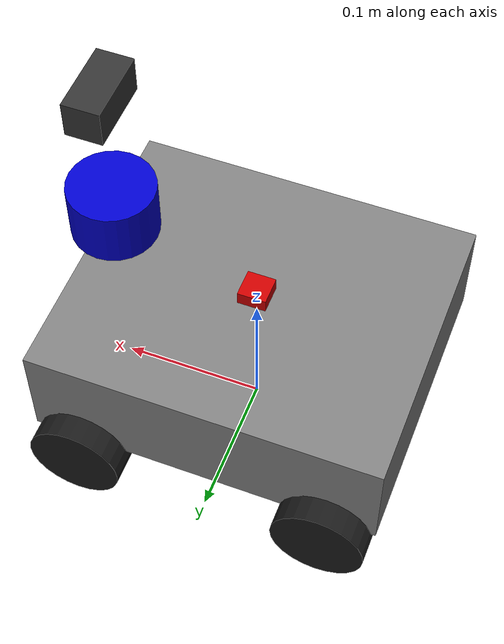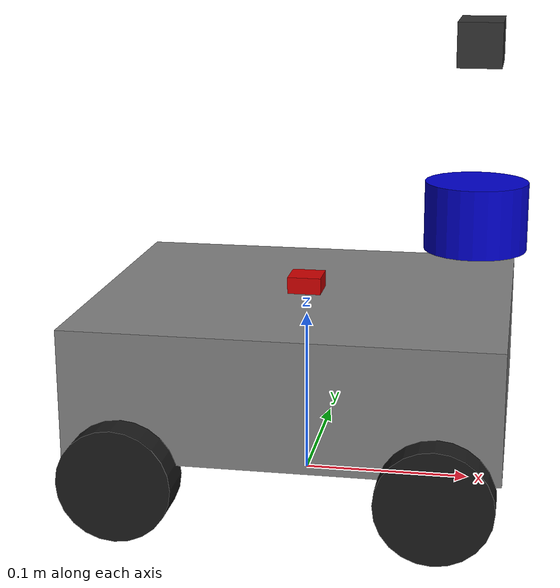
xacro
<?xml version="1.0"?>
<robot xmlns:xacro="http://www.ros.org/wiki/xacro" name="agrobot">

  <!-- Configuration Arguments                    -->
  <xacro:arg name="use_ros2_control" default="true"/>
  <xacro:arg name="is_sim" default="false"/>
  <xacro:arg name="use_gazebo_plugins" default="true"/>
  <xacro:arg name="serial_port" default="/tmp/esp32"/>
  <xacro:arg name="baud_rate" default="500000"/>
  <xacro:arg name="imu_yaw_offset" default="3.14159"/>

  <!-- Physical Parameters                        -->
  <!-- Chassis Dimensions -->
  <xacro:property name="chassis_length" value="0.245"/>
  <xacro:property name="chassis_width" value="0.205"/>
  <xacro:property name="chassis_height" value="0.075"/>
  <xacro:property name="chassis_mass" value="2.0"/>

  <!-- Ground Clearance (Distance from ground to bottom of chassis) -->
  <xacro:property name="ground_clearance" value="0.045"/>

  <!-- Wheel Properties -->
  <!-- 200mm wheels = 0.1m radius -->
  <xacro:property name="wheel_radius" value="0.0325"/>
  <xacro:property name="wheel_thickness" value="0.025"/>
  <xacro:property name="wheel_mass" value="0.2"/>

  <!-- Wheelbase (Distance between front and rear axles) -->
  <xacro:property name="wheelbase_length" value="0.175"/>
  <!-- Track Width (Distance between left and right wheel centers) -->
  <xacro:property name="track_width" value="0.215"/>

  <!-- Sensor Offsets (Relative to base_footprint) -->
  <!-- RPLiDAR Placement: perfectly situated just 5cm above the top of chassis box -->
  <xacro:property name="lidar_x_offset" value="0.1"/>
  <xacro:property name="lidar_y_offset" value="0.0"/>
  <xacro:property name="lidar_z_offset" value="${wheel_radius + ground_clearance + chassis_height/2 + 0.05}"/>

  <!-- Optical Monocular Camera Placement: placed just above LiDAR at about 10cm -->
  <xacro:property name="camera_x_offset" value="${lidar_x_offset}"/>
  <xacro:property name="camera_y_offset" value="${lidar_y_offset}"/>
  <xacro:property name="camera_z_offset" value="${lidar_z_offset + 0.10}"/>

  <!-- BNO085 IMU Placement (Strictly on chassis footprint, referenced to base_footprint) -->
  <xacro:property name="imu_x_offset" value="0.0"/>
  <xacro:property name="imu_y_offset" value="0.0"/>
  <xacro:property name="imu_z_offset" value="${wheel_radius + ground_clearance + chassis_height/2 + 0.005}"/>
  <xacro:property name="imu_yaw" value="$(arg imu_yaw_offset)"/>

  <!-- Inertial Macros                            -->
  <xacro:macro name="box_inertia" params="m w d h">
    <inertial>
      <mass value="${m}"/>
      <inertia ixx="${(m/12)*(d*d + h*h)}" ixy="0.0" ixz="0.0"
               iyy="${(m/12)*(w*w + h*h)}" iyz="0.0"
               izz="${(m/12)*(w*w + d*d)}"/>
    </inertial>
  </xacro:macro>

  <xacro:macro name="cylinder_inertia" params="m r h">
    <inertial>
      <mass value="${m}"/>
      <inertia ixx="${(m/12)*(3*r*r + h*h)}" ixy="0.0" ixz="0.0"
               iyy="${(m/12)*(3*r*r + h*h)}" iyz="0.0"
               izz="${(m/2)*(r*r)}"/>
    </inertial>
  </xacro:macro>

  <!-- Base Links (REP-105 Compliant)             -->
  <!-- Base Footprint: Projected center on the ground plane -->
  <link name="base_footprint"/>

  <!-- Base Link: The physical center of the robot -->
  <joint name="base_footprint_joint" type="fixed">
    <parent link="base_footprint"/>
    <child link="base_link"/>
    <origin xyz="0 0 ${wheel_radius + ground_clearance}" rpy="0 0 0"/>
  </joint>

  <link name="base_link"/>

  <!-- Chassis Link -->
  <joint name="chassis_joint" type="fixed">
    <parent link="base_link"/>
    <child link="chassis_link"/>
    <origin xyz="0 0 0" rpy="0 0 0"/>
  </joint>

  <link name="chassis_link">
    <visual>
      <geometry>
        <box size="${chassis_length} ${chassis_width} ${chassis_height}"/>
      </geometry>
      <material name="grey">
        <color rgba="0.5 0.5 0.5 1.0"/>
      </material>
    </visual>
    <collision>
      <geometry>
        <box size="${chassis_length} ${chassis_width} ${chassis_height}"/>
      </geometry>
    </collision>
    <xacro:box_inertia m="${chassis_mass}" w="${chassis_width}" d="${chassis_length}" h="${chassis_height}"/>
  </link>

  <!-- Wheel Macro                                -->
  <xacro:macro name="wheel" params="prefix x_reflect y_reflect">
    <link name="${prefix}_wheel_link">
      <visual>
        <geometry>
          <cylinder radius="${wheel_radius}" length="${wheel_thickness}"/>
        </geometry>
        <material name="black">
          <color rgba="0.1 0.1 0.1 1.0"/>
        </material>
      </visual>
      <collision>
        <geometry>
          <cylinder radius="${wheel_radius}" length="${wheel_thickness}"/>
        </geometry>
      </collision>
      <xacro:cylinder_inertia m="${wheel_mass}" r="${wheel_radius}" h="${wheel_thickness}"/>
    </link>

    <joint name="${prefix}_wheel_joint" type="continuous">
      <parent link="base_link"/>
      <child link="${prefix}_wheel_link"/>
      <!-- Calculate wheel offset from center -->
      <origin xyz="${x_reflect * (wheelbase_length/2)} ${y_reflect * (track_width/2)} ${-ground_clearance}" rpy="${pi/2} 0 0"/>
      <axis xyz="0 0 -1"/>
    </joint>
  </xacro:macro>

  <!-- Instantiate 4 Wheels -->
  <xacro:wheel prefix="front_left" x_reflect="1" y_reflect="1"/>
  <xacro:wheel prefix="front_right" x_reflect="1" y_reflect="-1"/>
  <xacro:wheel prefix="rear_left" x_reflect="-1" y_reflect="1"/>
  <xacro:wheel prefix="rear_right" x_reflect="-1" y_reflect="-1"/>

  <!-- Sensors (Connected directly to base_footprint) -->
  <!-- RPLiDAR (Static link connected directly to base_footprint, 5cm above chassis) -->
  <link name="lidar_link">
    <visual>
      <geometry>
        <cylinder radius="0.03" length="0.04"/>
      </geometry>
      <material name="blue">
        <color rgba="0.0 0.0 0.8 1.0"/>
      </material>
    </visual>
    <collision>
      <geometry>
        <cylinder radius="0.03" length="0.04"/>
      </geometry>
    </collision>
    <xacro:cylinder_inertia m="0.1" r="0.03" h="0.04"/>
  </link>

  <joint name="lidar_joint" type="fixed">
    <parent link="base_footprint"/>
    <child link="lidar_link"/>
    <origin xyz="${lidar_x_offset} ${lidar_y_offset} ${lidar_z_offset}" rpy="0 0 0"/>
  </joint>

  <!-- Optical Monocular Camera (Static link connected directly to base_footprint, 10cm above LiDAR) -->
  <link name="camera_link">
    <visual>
      <origin xyz="0 0 0" rpy="0 0 0"/>
      <geometry>
        <box size="0.025 0.05 0.025"/>
      </geometry>
      <material name="dark_grey">
        <color rgba="0.2 0.2 0.2 1.0"/>
      </material>
    </visual>
    <collision>
      <geometry>
        <box size="0.025 0.05 0.025"/>
      </geometry>
    </collision>
    <xacro:box_inertia m="0.05" w="0.05" d="0.025" h="0.025"/>
  </link>

  <joint name="camera_joint" type="fixed">
    <parent link="base_footprint"/>
    <child link="camera_link"/>
    <origin xyz="${camera_x_offset} ${camera_y_offset} ${camera_z_offset}" rpy="0 0 0"/>
  </joint>

  <!-- Camera Optical Frame (Standard ROS REP-103 convention: Z forward, X right, Y down) -->
  <link name="camera_optical_link"/>

  <joint name="camera_optical_joint" type="fixed">
    <parent link="camera_link"/>
    <child link="camera_optical_link"/>
    <origin xyz="0 0 0" rpy="${-pi/2} 0 ${-pi/2}"/>
  </joint>

  <!-- BNO085 IMU (Static link connected directly to base_footprint) -->
  <link name="imu_link">
    <visual>
      <geometry>
        <box size="0.02 0.02 0.01"/>
      </geometry>
      <material name="red">
        <color rgba="0.8 0.0 0.0 1.0"/>
      </material>
    </visual>
    <collision>
      <geometry>
        <box size="0.02 0.02 0.01"/>
      </geometry>
    </collision>
    <xacro:box_inertia m="0.01" w="0.02" d="0.02" h="0.01"/>
  </link>

  <joint name="imu_joint" type="fixed">
    <parent link="base_footprint"/>
    <child link="imu_link"/>
    <origin xyz="${imu_x_offset} ${imu_y_offset} ${imu_z_offset}" rpy="0 0 ${imu_yaw}"/>
  </joint>

  <!-- ros2_control Inclusion                     -->
  <xacro:if value="$(arg use_ros2_control)">
    <xacro:include filename="$(find agrobot_description)/urdf/agrobot.ros2_control.xacro"/>
    <xacro:agrobot_ros2_control
      serial_port="$(arg serial_port)"
      baud_rate="$(arg baud_rate)"
      is_sim="$(arg is_sim)"/>
  </xacro:if>

  <!-- Gazebo Plugins & Properties Inclusion      -->
  <xacro:if value="$(arg use_gazebo_plugins)">
    <xacro:include filename="$(find agrobot_description)/urdf/agrobot.gazebo.xacro"/>
    <xacro:agrobot_gazebo is_sim="$(arg is_sim)"/>
  </xacro:if>

</robot>
